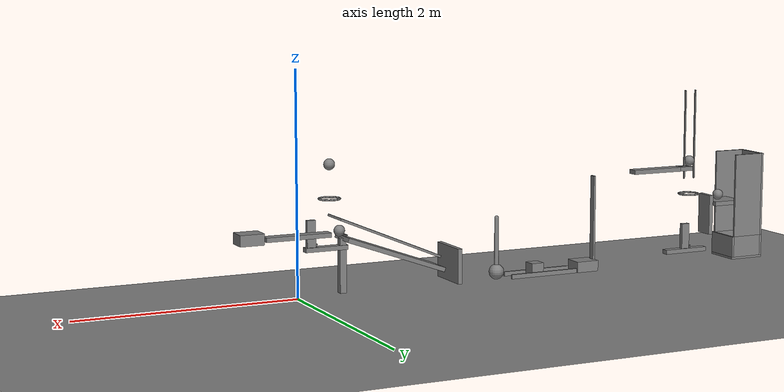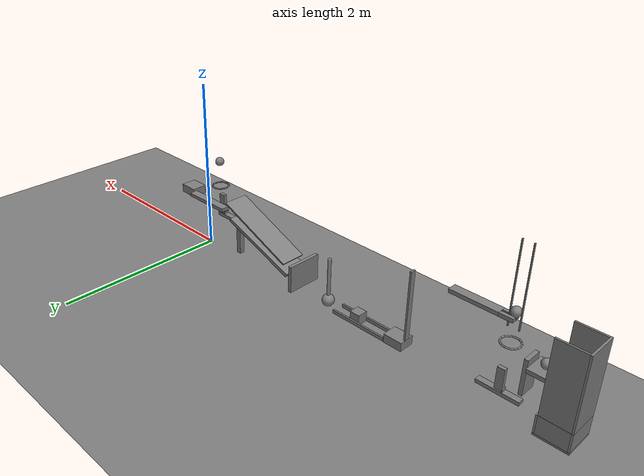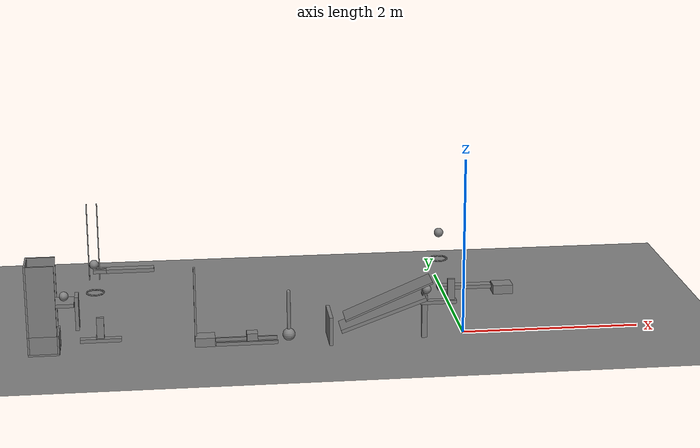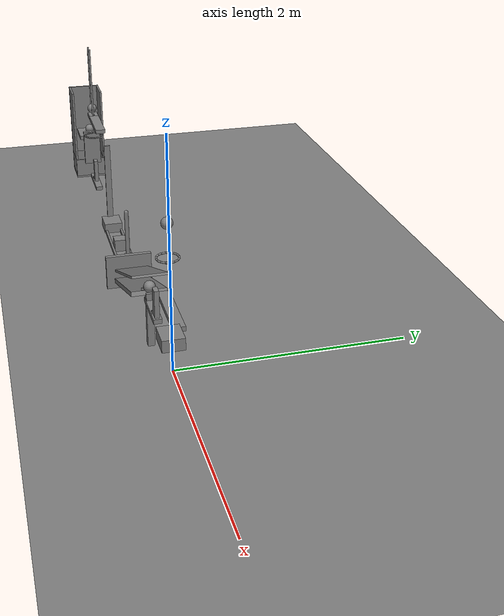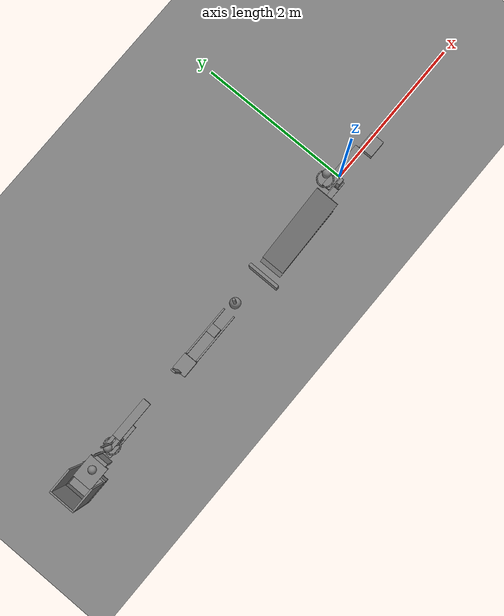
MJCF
<mujoco model="gravity_cascade_with_guided_vertical_launch">
  <compiler angle="radian"/>
  <option timestep="0.002"/>
  <worldbody>
    <geom name="floor" type="plane" size="12 12 0.1" friction="0.72 0.005 0.0001"/>
    <body name="lever1" pos="0 0 0.55">
      <joint name="lever1_hinge" type="hinge" pos="0 0 0" axis="0 1 0" limited="true" range="-0.785398 0" damping="0.04"/>
      <geom name="lever1" type="box" pos="0 0 0" size="0.3 0.05 0.02" mass="0.5" friction="0.72 0.005 0.0001" solref="0.01 0.715646"/>
    </body>
    <body name="ring1">
      <geom name="ring1_00" type="capsule" size="0.008" fromto="-0.191351 0.04 0.87 -0.19848 0.0758378 0.87" friction="0.72 0.005 0.0001" solref="0.01 0.715646"/>
      <geom name="ring1_01" type="capsule" size="0.008" fromto="-0.19848 0.0758378 0.87 -0.21878 0.10622 0.87" friction="0.72 0.005 0.0001" solref="0.01 0.715646"/>
      <geom name="ring1_02" type="capsule" size="0.008" fromto="-0.21878 0.10622 0.87 -0.249162 0.12652 0.87" friction="0.72 0.005 0.0001" solref="0.01 0.715646"/>
      <geom name="ring1_03" type="capsule" size="0.008" fromto="-0.249162 0.12652 0.87 -0.285 0.133649 0.87" friction="0.72 0.005 0.0001" solref="0.01 0.715646"/>
      <geom name="ring1_04" type="capsule" size="0.008" fromto="-0.285 0.133649 0.87 -0.320838 0.12652 0.87" friction="0.72 0.005 0.0001" solref="0.01 0.715646"/>
      <geom name="ring1_05" type="capsule" size="0.008" fromto="-0.320838 0.12652 0.87 -0.35122 0.10622 0.87" friction="0.72 0.005 0.0001" solref="0.01 0.715646"/>
      <geom name="ring1_06" type="capsule" size="0.008" fromto="-0.35122 0.10622 0.87 -0.37152 0.0758378 0.87" friction="0.72 0.005 0.0001" solref="0.01 0.715646"/>
      <geom name="ring1_07" type="capsule" size="0.008" fromto="-0.37152 0.0758378 0.87 -0.378649 0.04 0.87" friction="0.72 0.005 0.0001" solref="0.01 0.715646"/>
      <geom name="ring1_08" type="capsule" size="0.008" fromto="-0.378649 0.04 0.87 -0.37152 0.00416217 0.87" friction="0.72 0.005 0.0001" solref="0.01 0.715646"/>
      <geom name="ring1_09" type="capsule" size="0.008" fromto="-0.37152 0.00416217 0.87 -0.35122 -0.0262197 0.87" friction="0.72 0.005 0.0001" solref="0.01 0.715646"/>
      <geom name="ring1_10" type="capsule" size="0.008" fromto="-0.35122 -0.0262197 0.87 -0.320838 -0.0465202 0.87" friction="0.72 0.005 0.0001" solref="0.01 0.715646"/>
      <geom name="ring1_11" type="capsule" size="0.008" fromto="-0.320838 -0.0465202 0.87 -0.285 -0.0536488 0.87" friction="0.72 0.005 0.0001" solref="0.01 0.715646"/>
      <geom name="ring1_12" type="capsule" size="0.008" fromto="-0.285 -0.0536488 0.87 -0.249162 -0.0465202 0.87" friction="0.72 0.005 0.0001" solref="0.01 0.715646"/>
      <geom name="ring1_13" type="capsule" size="0.008" fromto="-0.249162 -0.0465202 0.87 -0.21878 -0.0262197 0.87" friction="0.72 0.005 0.0001" solref="0.01 0.715646"/>
      <geom name="ring1_14" type="capsule" size="0.008" fromto="-0.21878 -0.0262197 0.87 -0.19848 0.00416217 0.87" friction="0.72 0.005 0.0001" solref="0.01 0.715646"/>
      <geom name="ring1_15" type="capsule" size="0.008" fromto="-0.19848 0.00416217 0.87 -0.191351 0.04 0.87" friction="0.72 0.005 0.0001" solref="0.01 0.715646"/>
    </body>
    <body name="ball1" pos="-0.285 0.04 1.17">
      <freejoint/>
      <geom name="ball1" type="sphere" pos="0 0 0" size="0.05" mass="0.2" condim="6" friction="0.72 0.005 0.0001" solref="0.01 0.715646"/>
    </body>
    <body name="cart1" pos="0.41 -0.09 0.55">
      <joint name="cart1_slide" type="slide" pos="0 0 0" axis="1 0 0" limited="true" range="-0.6 0" stiffness="180" springref="-0.42" damping="0.2"/>
      <geom name="cart1" type="box" pos="0 0 0" size="0.11 0.09 0.05" mass="0.5" friction="0.72 0.005 0.0001" solref="0.01 0.715646"/>
    </body>
    <body name="domino1 platform">
      <geom name="domino1 platform" type="box" pos="-0.3 -0.09 0.41" size="0.2 0.035 0.02" friction="0.72 0.005 0.0001" solref="0.01 0.715646"/>
    </body>
    <body name="domino1 toe">
      <geom name="domino1 toe" type="box" pos="-0.205 -0.09 0.445" size="0.005 0.03 0.015" friction="0.72 0.005 0.0001" solref="0.01 0.715646"/>
    </body>
    <body name="domino1" pos="-0.16 -0.09 0.55">
      <freejoint/>
      <geom name="domino1" type="box" pos="0 0 0" size="0.04 0.02 0.12" mass="0.25" friction="0.72 0.005 0.0001" solref="0.01 0.715646"/>
    </body>
    <body name="ramp1">
      <geom name="ramp1_deck" type="box" pos="-0.923787 -0.09 0.32101" size="0.5 0.15 0.02" euler="0 2.79253 0" friction="0.72 0.005 0.0001" solref="0.01 0.715646"/>
      <geom name="ramp1_leg" type="box" pos="-0.453941 -0.09 0.24601" size="0.03 0.03 0.24601" friction="0.72 0.005 0.0001" solref="0.01 0.715646"/>
    </body>
    <body name="ball2 retaining lip">
      <geom name="ball2 retaining lip" type="box" pos="-0.48 -0.09 0.51" size="0.005 0.06 0.015" friction="0.72 0.005 0.0001" solref="0.01 0.715646"/>
    </body>
    <body name="ball2" pos="-0.43 -0.09 0.557798">
      <freejoint/>
      <geom name="ball2" type="sphere" pos="0 0 0" size="0.05" mass="0.2" condim="6" friction="0.72 0.005 0.0001" solref="0.01 0.715646"/>
    </body>
    <body name="ramp cover">
      <geom name="ramp cover" type="box" pos="-0.867012 -0.09 0.476999" size="0.522504 0.15 0.01" euler="0 2.74266 0" friction="0.72 0.005 0.0001" solref="0.01 0.715646"/>
    </body>
    <body name="door1" pos="-1.51363 0.12 0.18">
      <joint name="door1_hinge" type="hinge" pos="0 0 0" axis="0 0 1" limited="true" range="-1.22173 0" damping="0.04"/>
      <geom name="door1" type="box" pos="0 -0.21 0" size="0.02 0.21 0.16" mass="0.45" friction="0.72 0.005 0.0001" solref="0.01 0.715646"/>
    </body>
    <body name="pendulum1" pos="-1.9583 -0.024 0.57">
      <joint name="pendulum1_hinge" type="hinge" pos="0 0 0" axis="0 1 0" limited="true" range="0 0.785398" damping="0.04"/>
      <geom name="pendulum1" type="sphere" pos="0 0 -0.5" size="0.07" mass="0.28" friction="0.72 0.005 0.0001" solref="0.01 0.715646"/>
      <geom name="pendulum rod" type="capsule" size="0.02" fromto="0 0 0 0 3.46945e-18 -0.43" mass="0.07" friction="0.72 0.005 0.0001" solref="0.01 0.715646"/>
    </body>
    <body name="block1" pos="-2.3681 -0.04 0.06">
      <freejoint/>
      <geom name="block1" type="box" pos="0 0 0" size="0.06 0.06 0.06" mass="0.35" friction="0.72 0.005 0.0001" solref="0.01 0.715646"/>
    </body>
    <body name="block left guide">
      <geom name="block left guide" type="box" pos="-2.4281 0.035 0.02" size="0.34 0.01 0.02" friction="0.72 0.005 0.0001" solref="0.01 0.715646"/>
    </body>
    <body name="block right guide">
      <geom name="block right guide" type="box" pos="-2.4281 -0.115 0.02" size="0.34 0.01 0.02" friction="0.72 0.005 0.0001" solref="0.01 0.715646"/>
    </body>
    <body name="cart2" pos="-2.8881 -0.04 0.05">
      <joint name="cart2_slide" type="slide" pos="0 0 0" axis="1 0 0" limited="true" range="-0.65 0" damping="0.2"/>
      <geom name="cart2" type="box" pos="0 0 0" size="0.11 0.09 0.05" mass="0.48" friction="0.72 0.005 0.0001" solref="0.01 0.715646"/>
      <geom name="cart2 upright" type="box" pos="-0.1 0 0.445" size="0.01 0.03 0.395" mass="0.02" friction="0.72 0.005 0.0001" solref="0.01 0.715646"/>
    </body>
    <body name="seesaw1" pos="-3.7431 -0.04 0.9">
      <joint name="seesaw1_hinge" type="hinge" pos="0 0 0" axis="0 1 0" limited="true" range="0 0.733038" stiffness="0.75" springref="0.733038" damping="0.04"/>
      <geom name="seesaw1" type="box" pos="0.07 0 0" size="0.255 0.05 0.02" mass="0.450965" friction="0.72 0.005 0.0001" solref="0.01 0.715646"/>
      <geom name="seesaw upper tine" type="box" pos="-0.255 0.03 0" size="0.07 0.02 0.02" mass="0.0495177" friction="0.72 0.005 0.0001" solref="0.01 0.715646"/>
      <geom name="seesaw lower tine" type="box" pos="-0.255 -0.03 0" size="0.07 0.02 0.02" mass="0.0495177" friction="0.72 0.005 0.0001" solref="0.01 0.715646"/>
    </body>
    <body name="ball3 forward guide">
      <geom name="ball3 forward guide" type="box" pos="-4.0031 -0.04 1.225" size="0.005 0.009 0.425" friction="0.72 0.005 0.0001" solref="0.01 0.715646"/>
    </body>
    <body name="ball3 rear guide">
      <geom name="ball3 rear guide" type="box" pos="-4.1131 -0.04 1.225" size="0.005 0.009 0.425" friction="0.72 0.005 0.0001" solref="0.01 0.715646"/>
    </body>
    <body name="ball3" pos="-4.0581 -0.04 0.97">
      <freejoint/>
      <geom name="ball3" type="sphere" pos="0 0 0" size="0.05" mass="0.2" condim="6" friction="0.72 0.005 0.0001" solref="0.01 0.715646"/>
    </body>
    <body name="ring2">
      <geom name="ring2_00" type="capsule" size="0.008" fromto="-3.96445 -0.04 0.65 -3.97158 -0.00416217 0.65" friction="0.72 0.005 0.0001" solref="0.01 0.715646"/>
      <geom name="ring2_01" type="capsule" size="0.008" fromto="-3.97158 -0.00416217 0.65 -3.99188 0.0262197 0.65" friction="0.72 0.005 0.0001" solref="0.01 0.715646"/>
      <geom name="ring2_02" type="capsule" size="0.008" fromto="-3.99188 0.0262197 0.65 -4.02226 0.0465202 0.65" friction="0.72 0.005 0.0001" solref="0.01 0.715646"/>
      <geom name="ring2_03" type="capsule" size="0.008" fromto="-4.02226 0.0465202 0.65 -4.0581 0.0536488 0.65" friction="0.72 0.005 0.0001" solref="0.01 0.715646"/>
      <geom name="ring2_04" type="capsule" size="0.008" fromto="-4.0581 0.0536488 0.65 -4.09394 0.0465202 0.65" friction="0.72 0.005 0.0001" solref="0.01 0.715646"/>
      <geom name="ring2_05" type="capsule" size="0.008" fromto="-4.09394 0.0465202 0.65 -4.12432 0.0262197 0.65" friction="0.72 0.005 0.0001" solref="0.01 0.715646"/>
      <geom name="ring2_06" type="capsule" size="0.008" fromto="-4.12432 0.0262197 0.65 -4.14462 -0.00416217 0.65" friction="0.72 0.005 0.0001" solref="0.01 0.715646"/>
      <geom name="ring2_07" type="capsule" size="0.008" fromto="-4.14462 -0.00416217 0.65 -4.15175 -0.04 0.65" friction="0.72 0.005 0.0001" solref="0.01 0.715646"/>
      <geom name="ring2_08" type="capsule" size="0.008" fromto="-4.15175 -0.04 0.65 -4.14462 -0.0758378 0.65" friction="0.72 0.005 0.0001" solref="0.01 0.715646"/>
      <geom name="ring2_09" type="capsule" size="0.008" fromto="-4.14462 -0.0758378 0.65 -4.12432 -0.10622 0.65" friction="0.72 0.005 0.0001" solref="0.01 0.715646"/>
      <geom name="ring2_10" type="capsule" size="0.008" fromto="-4.12432 -0.10622 0.65 -4.09394 -0.12652 0.65" friction="0.72 0.005 0.0001" solref="0.01 0.715646"/>
      <geom name="ring2_11" type="capsule" size="0.008" fromto="-4.09394 -0.12652 0.65 -4.0581 -0.133649 0.65" friction="0.72 0.005 0.0001" solref="0.01 0.715646"/>
      <geom name="ring2_12" type="capsule" size="0.008" fromto="-4.0581 -0.133649 0.65 -4.02226 -0.12652 0.65" friction="0.72 0.005 0.0001" solref="0.01 0.715646"/>
      <geom name="ring2_13" type="capsule" size="0.008" fromto="-4.02226 -0.12652 0.65 -3.99188 -0.10622 0.65" friction="0.72 0.005 0.0001" solref="0.01 0.715646"/>
      <geom name="ring2_14" type="capsule" size="0.008" fromto="-3.99188 -0.10622 0.65 -3.97158 -0.0758378 0.65" friction="0.72 0.005 0.0001" solref="0.01 0.715646"/>
      <geom name="ring2_15" type="capsule" size="0.008" fromto="-3.97158 -0.0758378 0.65 -3.96445 -0.04 0.65" friction="0.72 0.005 0.0001" solref="0.01 0.715646"/>
    </body>
    <body name="domino2 platform">
      <geom name="domino2 platform" type="box" pos="-4.0231 -0.04 0.1" size="0.225 0.035 0.02" friction="0.72 0.005 0.0001" solref="0.01 0.715646"/>
    </body>
    <body name="domino2 toe">
      <geom name="domino2 toe" type="box" pos="-4.0681 -0.04 0.135" size="0.005 0.03 0.015" friction="0.72 0.005 0.0001" solref="0.01 0.715646"/>
    </body>
    <body name="domino2" pos="-4.0231 -0.04 0.24">
      <freejoint/>
      <geom name="domino2" type="box" pos="0 0 0" size="0.04 0.02 0.12" mass="0.25" friction="0.72 0.005 0.0001" solref="0.01 0.715646"/>
    </body>
    <body name="flap1" pos="-4.2631 -0.04 0.63">
      <joint name="flap1_hinge" type="hinge" pos="0 0 0" axis="0 1 0" limited="true" range="0 1.0472" damping="0.04"/>
      <geom name="flap1" type="box" pos="0 6.93889e-18 -0.19" size="0.02 0.09 0.19" mass="0.28" friction="0.72 0.005 0.0001" solref="0.01 0.715646"/>
    </body>
    <body name="cup1">
      <geom name="cup1_base" type="box" pos="-4.635 -0.04 0.01" size="0.17 0.17 0.01" friction="0.72 0.005 0.0001" solref="0.01 0.715646"/>
      <geom name="cup1_near_wall" type="box" pos="-4.795 -0.04 0.12" size="0.01 0.17 0.1" friction="0.72 0.005 0.0001" solref="0.01 0.715646"/>
      <geom name="cup1_far_wall" type="box" pos="-4.475 -0.04 0.12" size="0.01 0.17 0.1" friction="0.72 0.005 0.0001" solref="0.01 0.715646"/>
      <geom name="cup1_left_wall" type="box" pos="-4.635 0.12 0.12" size="0.15 0.01 0.1" friction="0.72 0.005 0.0001" solref="0.01 0.715646"/>
      <geom name="cup1_right_wall" type="box" pos="-4.635 -0.2 0.12" size="0.15 0.01 0.1" friction="0.72 0.005 0.0001" solref="0.01 0.715646"/>
    </body>
    <body name="shelf1">
      <geom name="shelf1" type="box" pos="-4.44 -0.04 0.55" size="0.15 0.125 0.02" friction="0.72 0.005 0.0001" solref="0.01 0.715646"/>
    </body>
    <body name="ball4" pos="-4.4 -0.04 0.62">
      <freejoint/>
      <geom name="ball4" type="sphere" pos="0 0 0" size="0.05" mass="0.2" condim="6" friction="0.72 0.005 0.0001" solref="0.01 0.715646"/>
    </body>
    <body name="cup backstop">
      <geom name="cup backstop" type="box" pos="-4.795 -0.04 0.62" size="0.01 0.17 0.4" friction="0.72 0.005 0.0001" solref="0.01 0.715646"/>
    </body>
    <body name="cup left catch guide">
      <geom name="cup left catch guide" type="box" pos="-4.635 0.12 0.62" size="0.15 0.01 0.4" friction="0.72 0.005 0.0001" solref="0.01 0.715646"/>
    </body>
    <body name="cup right catch guide">
      <geom name="cup right catch guide" type="box" pos="-4.635 -0.2 0.62" size="0.15 0.01 0.4" friction="0.72 0.005 0.0001" solref="0.01 0.715646"/>
    </body>
  </worldbody>
  <keyframe>
    <key name="start" qpos="0 -0.285 0.04 1.17 1 0 0 0 0 -0.16 -0.09 0.55 1 0 0 0 -0.43 -0.09 0.557798 1 0 0 0 0 0 -2.3681 -0.04 0.06 1 0 0 0 0 0 -4.0581 -0.04 0.97 1 0 0 0 -4.0231 -0.04 0.24 1 0 0 0 0 -4.4 -0.04 0.62 1 0 0 0" qvel="0 0 0 0 0 0 0 0 0 0 0 0 0 0 0 0 0 0 0 0 0 0 0 0 0 0 0 0 0 0 0 0 0 0 0 0 0 0 0 0 0 0 0 0 0 0 0 0 0"/>
  </keyframe>
</mujoco>
